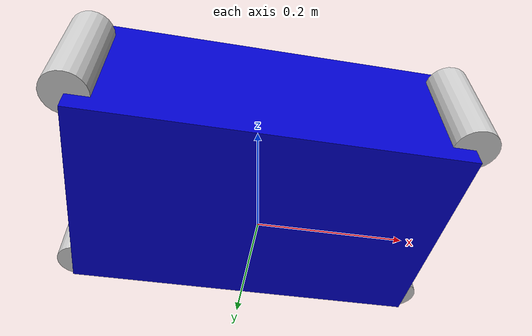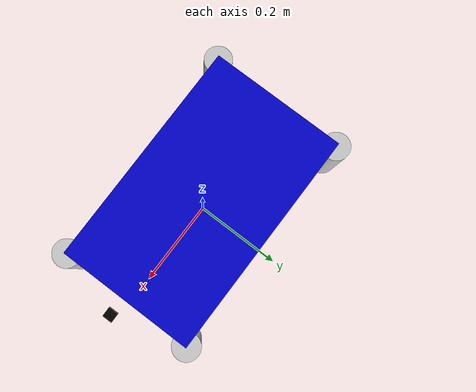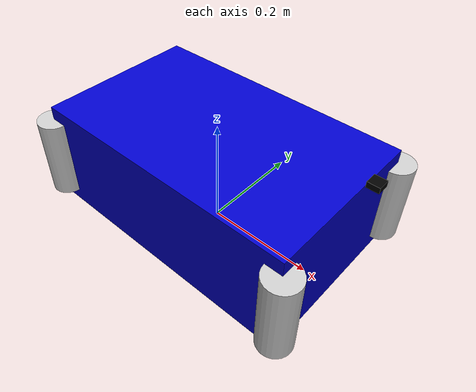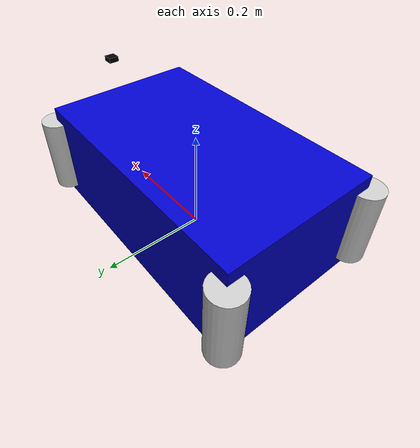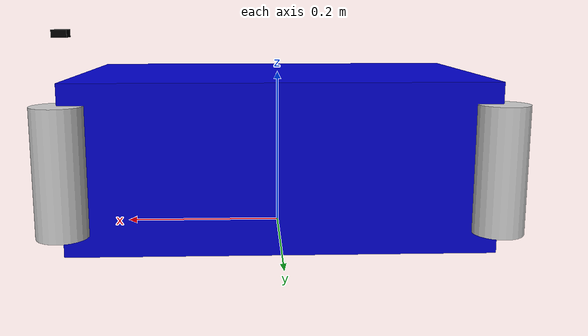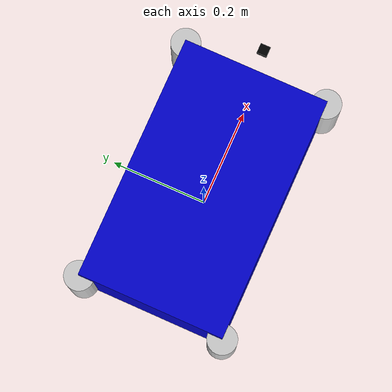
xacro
<?xml version="1.0"?>
<robot name="mechdog" xmlns:xacro="http://www.ros.org/wiki/xacro">
  <xacro:arg name="simulation" default="false"/>

  <!-- Robot Properties -->
  <xacro:property name="robot_length" value="0.5"/>
  <xacro:property name="robot_width" value="0.3"/>
  <xacro:property name="robot_height" value="0.2"/>
  <xacro:property name="robot_mass" value="2.0"/>

  <!-- Sensor Offsets — Ultrasonic at front-center, past the legs -->
  <xacro:property name="ultrasonic_offset_x" value="0.28"/>
  <xacro:property name="ultrasonic_offset_z" value="0.15"/>
  <xacro:property name="ultrasonic_fov" value="0.26"/>
  <xacro:property name="ultrasonic_min_range" value="0.02"/>
  <xacro:property name="ultrasonic_max_range" value="3.0"/>

  <!-- Velocity Limits -->
  <xacro:property name="max_velocity" value="1.0"/>
  <xacro:property name="max_angular_velocity" value="1.5"/>

  <!-- Materials -->
  <material name="blue">
    <color rgba="0.0 0.0 0.8 1.0"/>
  </material>
  <material name="gray">
    <color rgba="0.8 0.8 0.8 1.0"/>
  </material>
  <material name="black">
    <color rgba="0.0 0.0 0.0 1.0"/>
  </material>
  <material name="red">
    <color rgba="0.8 0.0 0.0 1.0"/>
  </material>

  <!-- Base Link (main body) -->
  <link name="base_link">
    <visual>
      <geometry>
        <box size="${robot_length} ${robot_width} ${robot_height}"/>
      </geometry>
      <material name="blue"/>
    </visual>
    <collision>
      <geometry>
        <box size="${robot_length} ${robot_width} ${robot_height}"/>
      </geometry>
    </collision>
    <inertial>
      <mass value="${robot_mass}"/>
      <origin xyz="0 0 0" />
      <inertia  ixx="${robot_mass * (robot_length*robot_length + robot_width*robot_width) / 12.0}"
                ixy="0.0"  ixz="0.0"
                iyy="${robot_mass * (robot_width*robot_width + robot_height*robot_height) / 12.0}"
                iyz="0.0"  izz="${robot_mass * (robot_length*robot_length + robot_height*robot_height) / 12.0}"/>
    </inertial>
  </link>

  <!-- Base Footprint (for navigation) -->
  <link name="base_footprint">
  </link>

  <!-- Static transform between base_footprint and base_link -->
  <joint name="base_footprint_base_link" type="fixed">
    <origin xyz="0 0 ${robot_height/2}" rpy="0 0 0"/>
    <parent link="base_footprint"/>
    <child link="base_link"/>
  </joint>

  <!-- Ultrasonic Sensor (HC-SR04 equivalent) -->
  <link name="ultrasonic_link">
    <visual>
      <geometry>
        <box size="0.02 0.02 0.01"/>
      </geometry>
      <material name="black"/>
    </visual>
    <collision>
      <geometry>
        <box size="0.02 0.02 0.01"/>
      </geometry>
    </collision>
    <inertial>
      <mass value="0.01"/>
      <origin xyz="0 0 0" />
      <inertia  ixx="0.00001" ixy="0.0" ixz="0.0"
                iyy="0.00001" iyz="0.0" izz="0.00001"/>
    </inertial>
  </link>

  <!-- Static transform from base_link to ultrasonic_link -->
  <joint name="base_link_ultrasonic_link" type="fixed">
    <origin xyz="${ultrasonic_offset_x} 0 ${ultrasonic_offset_z}" rpy="0 0 0"/>
    <parent link="base_link"/>
    <child link="ultrasonic_link"/>
  </joint>

  <!-- Simplified Leg Links (for visualization) -->
  <!-- Front Left Leg -->
  <link name="leg_front_left">
    <visual>
      <geometry>
        <cylinder length="0.15" radius="0.03"/>
      </geometry>
      <material name="gray"/>
    </visual>
    <collision>
      <geometry>
        <cylinder length="0.15" radius="0.03"/>
      </geometry>
    </collision>
    <inertial>
      <mass value="0.5"/>
      <origin xyz="0 0 0"/>
      <inertia ixx="0.001" ixy="0.0" ixz="0.0"
               iyy="0.001" iyz="0.0" izz="0.001"/>
    </inertial>
  </link>

  <!-- Front Right Leg -->
  <link name="leg_front_right">
    <visual>
      <geometry>
        <cylinder length="0.15" radius="0.03"/>
      </geometry>
      <material name="gray"/>
    </visual>
    <collision>
      <geometry>
        <cylinder length="0.15" radius="0.03"/>
      </geometry>
    </collision>
    <inertial>
      <mass value="0.5"/>
      <origin xyz="0 0 0"/>
      <inertia ixx="0.001" ixy="0.0" ixz="0.0"
               iyy="0.001" iyz="0.0" izz="0.001"/>
    </inertial>
  </link>

  <!-- Rear Left Leg -->
  <link name="leg_rear_left">
    <visual>
      <geometry>
        <cylinder length="0.15" radius="0.03"/>
      </geometry>
      <material name="gray"/>
    </visual>
    <collision>
      <geometry>
        <cylinder length="0.15" radius="0.03"/>
      </geometry>
    </collision>
    <inertial>
      <mass value="0.5"/>
      <origin xyz="0 0 0"/>
      <inertia ixx="0.001" ixy="0.0" ixz="0.0"
               iyy="0.001" iyz="0.0" izz="0.001"/>
    </inertial>
  </link>

  <!-- Rear Right Leg -->
  <link name="leg_rear_right">
    <visual>
      <geometry>
        <cylinder length="0.15" radius="0.03"/>
      </geometry>
      <material name="gray"/>
    </visual>
    <collision>
      <geometry>
        <cylinder length="0.15" radius="0.03"/>
      </geometry>
    </collision>
    <inertial>
      <mass value="0.5"/>
      <origin xyz="0 0 0"/>
      <inertia ixx="0.001" ixy="0.0" ixz="0.0"
               iyy="0.001" iyz="0.0" izz="0.001"/>
    </inertial>
  </link>

  <!-- Leg Joints (fixed for now, could be made movable later) -->
  <!-- Front Left -->
  <joint name="base_link_leg_front_left" type="fixed">
    <origin xyz="${robot_length/2} ${robot_width/2} 0" rpy="0 0 0"/>
    <parent link="base_link"/>
    <child link="leg_front_left"/>
  </joint>

  <!-- Front Right -->
  <joint name="base_link_leg_front_right" type="fixed">
    <origin xyz="${robot_length/2} -${robot_width/2} 0" rpy="0 0 0"/>
    <parent link="base_link"/>
    <child link="leg_front_right"/>
  </joint>

  <!-- Rear Left -->
  <joint name="base_link_leg_rear_left" type="fixed">
    <origin xyz="-${robot_length/2} ${robot_width/2} 0" rpy="0 0 0"/>
    <parent link="base_link"/>
    <child link="leg_rear_left"/>
  </joint>

  <!-- Rear Right -->
  <joint name="base_link_leg_rear_right" type="fixed">
    <origin xyz="-${robot_length/2} -${robot_width/2} 0" rpy="0 0 0"/>
    <parent link="base_link"/>
    <child link="leg_rear_right"/>
  </joint>

  <!-- Simulation-only plugins (Gazebo) -->
  <xacro:if value="$(arg simulation)">
    <!-- Ground-truth Odometry Plugin (P3D) -->
    <gazebo>
      <plugin name="gazebo_ros_ground_truth_odom" filename="libgazebo_ros_p3d.so">
        <bodyName>base_link</bodyName>
        <topicName>/gazebo/odom_clean</topicName>
        <frameName>world</frameName>
        <xyzOffsets>0 0 0</xyzOffsets>
        <rpyOffsets>0 0 0</rpyOffsets>
        <updateRate>50.0</updateRate>
        <gaussianNoise>0.0</gaussianNoise>
      </plugin>
    </gazebo>

    <!-- Ultrasonic Range Sensor (HC-SR04 emulation)
         Topic: /gazebo/ultrasonic_clean  (sensor_msgs/Range)
         Max range: 3.0 m, FOV: 0.26 rad (15°), Rate: 20 Hz -->
    <gazebo reference="ultrasonic_link">
      <sensor type="ray" name="ultrasonic_sensor">
        <pose>0 0 0 0 0 0</pose>
        <visualize>true</visualize>
        <update_rate>20</update_rate>
        <ray>
          <scan>
            <horizontal>
              <samples>1</samples>
              <resolution>1</resolution>
              <min_angle>-0.13</min_angle>
              <max_angle>0.13</max_angle>
            </horizontal>
          </scan>
          <range>
            <min>0.02</min>
            <max>3.0</max>
            <resolution>0.01</resolution>
          </range>
          <noise>
            <type>gaussian</type>
            <mean>0.0</mean>
            <stddev>0.005</stddev>
          </noise>
        </ray>
        <plugin name="ultrasonic_range_controller" filename="libgazebo_ros_range.so">
          <topicName>/gazebo/ultrasonic_clean</topicName>
          <frameName>ultrasonic_link</frameName>
          <radiationType>ultrasonic</radiationType>
          <fov>0.26</fov>
          <minDistance>0.02</minDistance>
          <maxDistance>3.0</maxDistance>
          <gaussianNoise>0.005</gaussianNoise>
          <updateRate>20</updateRate>
        </plugin>
      </sensor>
    </gazebo>
  </xacro:if>

</robot>
